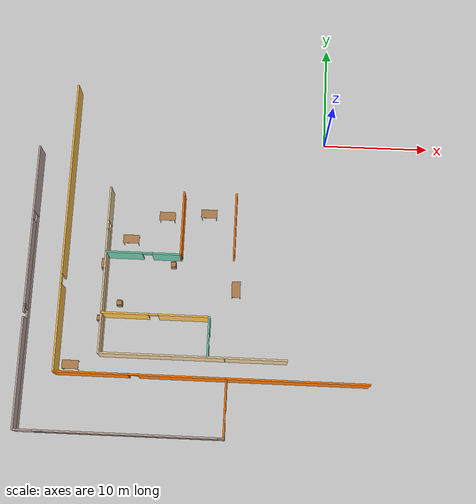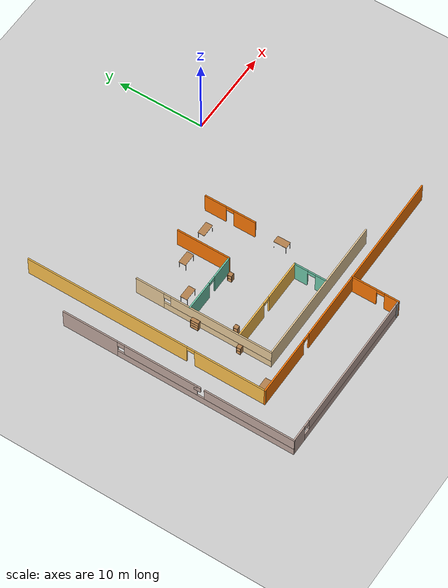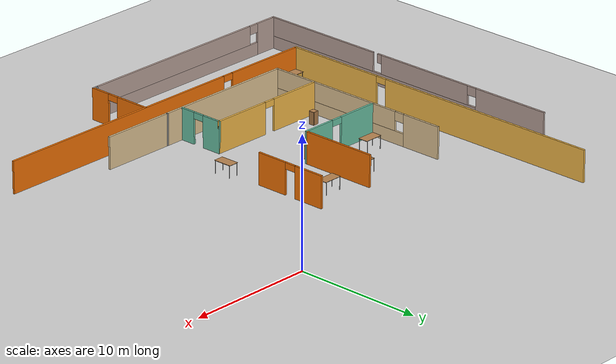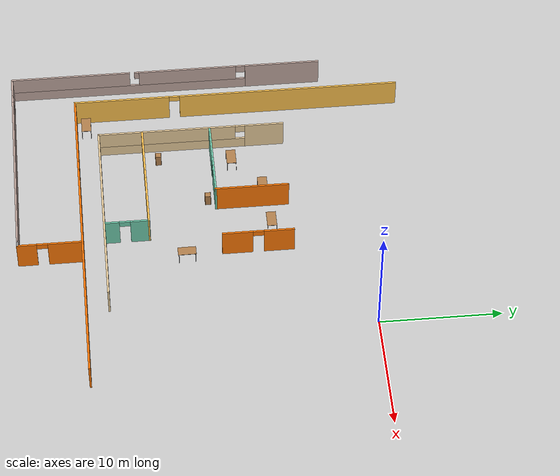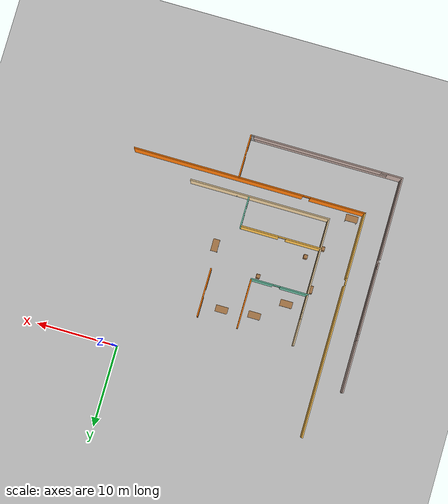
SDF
<sdf version="1.6">
 <world name="default">
  <model name="ground_plane">
   <static>1</static>
   <link name="link">
    <collision name="collision">
     <geometry><plane><normal>0 0 1</normal><size>100 100</size></plane></geometry>
     <surface>
      <contact><collide_bitmask>65535</collide_bitmask></contact>
      <friction><ode><mu>100</mu><mu2>50</mu2></ode></friction>
     </surface>
    </collision>
    <visual name="visual">
     <cast_shadows>0</cast_shadows>
     <geometry><plane><normal>0 0 1</normal><size>100 100</size></plane></geometry>
     <material>
      <script><uri>file://media/materials/scripts/gazebo.material</uri><name>Gazebo/Grey</name></script>
     </material>
    </visual>
   </link>
  </model>
  <model name="office">
   <pose>-7.49516 -7.8361 0 0 -0 0</pose>
   <link name="Wall_102">
    <collision name="Wall_102_Collision">
     <geometry><box><size>0.15 0.15 2.5</size></box></geometry>
     <pose>0 0 1.25 0 -0 0</pose>
    </collision>
    <visual name="Wall_102_Visual">
     <pose>0 0 1.25 0 -0 0</pose>
     <geometry><box><size>0.15 0.15 2.5</size></box></geometry>
     <material>
      <script><uri>file://media/materials/scripts/gazebo.material</uri><name>Gazebo/Grey</name></script>
      <ambient>1 1 1 1</ambient>
     </material>
     <meta><layer>0</layer></meta>
    </visual>
    <pose>-1.30984 -13.6609 0 0 -0 0</pose>
   </link>
   <link name="Wall_104">
    <pose>-9.25834 -4.24987 0 0 -0 0</pose>
    <visual name="Wall_104_Visual_0">
     <pose>-1.81443 0 1.25 0 -0 0</pose>
     <geometry><box><size>3.46632 0.15 2.5</size></box></geometry>
     <material>
      <script><uri>file://media/materials/scripts/gazebo.material</uri><name>Gazebo/Grey</name></script>
      <ambient>0.435294 0.796078 0.67451 1</ambient>
     </material>
     <meta><layer>0</layer></meta>
    </visual>
    <collision name="Wall_104_Collision_0">
     <geometry><box><size>3.46632 0.15 2.5</size></box></geometry>
     <pose>-1.81443 0 1.25 0 -0 0</pose>
    </collision>
    <visual name="Wall_104_Visual_1">
     <pose>2.18316 0 1.25 0 -0 0</pose>
     <geometry><box><size>2.72887 0.15 2.5</size></box></geometry>
     <material>
      <script><uri>file://media/materials/scripts/gazebo.material</uri><name>Gazebo/Grey</name></script>
      <ambient>0.435294 0.796078 0.67451 1</ambient>
     </material>
     <meta><layer>0</layer></meta>
    </visual>
    <collision name="Wall_104_Collision_1">
     <geometry><box><size>2.72887 0.15 2.5</size></box></geometry>
     <pose>2.18316 0 1.25 0 -0 0</pose>
    </collision>
    <visual name="Wall_104_Visual_2">
     <pose>0.368727 0 2.25 0 -0 0</pose>
     <geometry><box><size>0.9 0.15 0.5</size></box></geometry>
     <material>
      <script><uri>file://media/materials/scripts/gazebo.material</uri><name>Gazebo/Grey</name></script>
      <ambient>0.435294 0.796078 0.67451 1</ambient>
     </material>
     <meta><layer>0</layer></meta>
    </visual>
    <collision name="Wall_104_Collision_2">
     <geometry><box><size>0.9 0.15 0.5</size></box></geometry>
     <pose>0.368727 0 2.25 0 -0 0</pose>
    </collision>
   </link>
   <link name="Wall_105">
    <collision name="Wall_105_Collision">
     <geometry><box><size>6.163 0.15 2.5</size></box></geometry>
     <pose>0 0 1.25 0 -0 0</pose>
    </collision>
    <visual name="Wall_105_Visual">
     <pose>0 0 1.25 0 -0 0</pose>
     <geometry><box><size>6.163 0.15 2.5</size></box></geometry>
     <material>
      <script><uri>file://media/materials/scripts/gazebo.material</uri><name>Gazebo/Grey</name></script>
      <ambient>0.996078 0.47451 0.0196078 1</ambient>
     </material>
     <meta><layer>0</layer></meta>
    </visual>
    <pose>-5.78584 -1.24337 0 0 -0 1.5708</pose>
   </link>
   <link name="Wall_113">
    <pose>-2.36175 -15.5046 0 0 -0 3.14159</pose>
    <visual name="Wall_113_Visual_0">
     <pose>-3.87703 0 1.25 0 -0 0</pose>
     <geometry><box><size>20.9959 0.15 2.5</size></box></geometry>
     <material>
      <script><uri>file://media/materials/scripts/gazebo.material</uri><name>Gazebo/Grey</name></script>
      <ambient>0.996078 0.47451 0.0196078 1</ambient>
     </material>
     <meta><layer>0</layer></meta>
    </visual>
    <collision name="Wall_113_Collision_0">
     <geometry><box><size>20.9959 0.15 2.5</size></box></geometry>
     <pose>-3.87703 0 1.25 0 -0 0</pose>
    </collision>
    <visual name="Wall_113_Visual_1">
     <pose>10.948 0 1.25 0 -0 0</pose>
     <geometry><box><size>6.85407 0.15 2.5</size></box></geometry>
     <material>
      <script><uri>file://media/materials/scripts/gazebo.material</uri><name>Gazebo/Grey</name></script>
      <ambient>0.996078 0.47451 0.0196078 1</ambient>
     </material>
     <meta><layer>0</layer></meta>
    </visual>
    <collision name="Wall_113_Collision_1">
     <geometry><box><size>6.85407 0.15 2.5</size></box></geometry>
     <pose>10.948 0 1.25 0 -0 0</pose>
    </collision>
    <visual name="Wall_113_Visual_2">
     <pose>7.07093 0 2.25 0 -0 0</pose>
     <geometry><box><size>0.9 0.15 0.5</size></box></geometry>
     <material>
      <script><uri>file://media/materials/scripts/gazebo.material</uri><name>Gazebo/Grey</name></script>
      <ambient>0.996078 0.47451 0.0196078 1</ambient>
     </material>
     <meta><layer>0</layer></meta>
    </visual>
    <collision name="Wall_113_Collision_2">
     <geometry><box><size>0.9 0.15 0.5</size></box></geometry>
     <pose>7.07093 0 2.25 0 -0 0</pose>
    </collision>
   </link>
   <link name="Wall_114">
    <pose>-16.6618 -1.70464 0 0 -0 1.5708</pose>
    <visual name="Wall_114_Visual_0">
     <pose>-9.80586 0 1.25 0 -0 0</pose>
     <geometry><box><size>8.13829 0.15 2.5</size></box></geometry>
     <material>
      <script><uri>file://media/materials/scripts/gazebo.material</uri><name>Gazebo/Grey</name></script>
      <ambient>1 0.764706 0.305882 1</ambient>
     </material>
     <meta><layer>0</layer></meta>
    </visual>
    <collision name="Wall_114_Collision_0">
     <geometry><box><size>8.13829 0.15 2.5</size></box></geometry>
     <pose>-9.80586 0 1.25 0 -0 0</pose>
    </collision>
    <visual name="Wall_114_Visual_1">
     <pose>4.51914 0 1.25 0 -0 0</pose>
     <geometry><box><size>18.7117 0.15 2.5</size></box></geometry>
     <material>
      <script><uri>file://media/materials/scripts/gazebo.material</uri><name>Gazebo/Grey</name></script>
      <ambient>1 0.764706 0.305882 1</ambient>
     </material>
     <meta><layer>0</layer></meta>
    </visual>
    <collision name="Wall_114_Collision_1">
     <geometry><box><size>18.7117 0.15 2.5</size></box></geometry>
     <pose>4.51914 0 1.25 0 -0 0</pose>
    </collision>
    <visual name="Wall_114_Visual_2">
     <pose>-5.28671 0 2.25 0 -0 0</pose>
     <geometry><box><size>0.9 0.15 0.5</size></box></geometry>
     <material>
      <script><uri>file://media/materials/scripts/gazebo.material</uri><name>Gazebo/Grey</name></script>
      <ambient>1 0.764706 0.305882 1</ambient>
     </material>
     <meta><layer>0</layer></meta>
    </visual>
    <collision name="Wall_114_Collision_2">
     <geometry><box><size>0.9 0.15 0.5</size></box></geometry>
     <pose>-5.28671 0 2.25 0 -0 0</pose>
    </collision>
   </link>
   <link name="Wall_139">
    <pose>-1.01584 -18.1519 0 0 0 -1.5708</pose>
    <visual name="Wall_139_Visual_0">
     <pose>-1.27188 0 1.25 0 -0 0</pose>
     <geometry><box><size>2.9005 0.15 2.5</size></box></geometry>
     <material>
      <script><uri>file://media/materials/scripts/gazebo.material</uri><name>Gazebo/Grey</name></script>
      <ambient>0.996078 0.47451 0.0196078 1</ambient>
     </material>
     <meta><layer>0</layer></meta>
    </visual>
    <collision name="Wall_139_Collision_0">
     <geometry><box><size>2.9005 0.15 2.5</size></box></geometry>
     <pose>-1.27188 0 1.25 0 -0 0</pose>
    </collision>
    <visual name="Wall_139_Visual_1">
     <pose>1.90025 0 1.25 0 -0 0</pose>
     <geometry><box><size>1.64376 0.15 2.5</size></box></geometry>
     <material>
      <script><uri>file://media/materials/scripts/gazebo.material</uri><name>Gazebo/Grey</name></script>
      <ambient>0.996078 0.47451 0.0196078 1</ambient>
     </material>
     <meta><layer>0</layer></meta>
    </visual>
    <collision name="Wall_139_Collision_1">
     <geometry><box><size>1.64376 0.15 2.5</size></box></geometry>
     <pose>1.90025 0 1.25 0 -0 0</pose>
    </collision>
    <visual name="Wall_139_Visual_2">
     <pose>0.628368 0 2.25 0 -0 0</pose>
     <geometry><box><size>0.9 0.15 0.5</size></box></geometry>
     <material>
      <script><uri>file://media/materials/scripts/gazebo.material</uri><name>Gazebo/Grey</name></script>
      <ambient>0.996078 0.47451 0.0196078 1</ambient>
     </material>
     <meta><layer>0</layer></meta>
    </visual>
    <collision name="Wall_139_Collision_2">
     <geometry><box><size>0.9 0.15 0.5</size></box></geometry>
     <pose>0.628368 0 2.25 0 -0 0</pose>
    </collision>
   </link>
   <link name="Wall_145">
    <pose>-19.8248 -7.54437 0 0 0 -1.5708</pose>
    <visual name="Wall_145_Visual_0">
     <pose>-10.1231 0 1.25 0 -0 0</pose>
     <geometry><box><size>6.41324 0.15 2.5</size></box></geometry>
     <material>
      <script><uri>file://media/materials/scripts/gazebo.material</uri><name>Gazebo/Grey</name></script>
      <ambient>0.760784 0.662745 0.627451 1</ambient>
     </material>
     <meta><layer>0</layer></meta>
    </visual>
    <collision name="Wall_145_Collision_0">
     <geometry><box><size>6.41324 0.15 2.5</size></box></geometry>
     <pose>-10.1231 0 1.25 0 -0 0</pose>
    </collision>
    <visual name="Wall_145_Visual_1">
     <pose>3.20662 0 0.5 0 -0 0</pose>
     <geometry><box><size>20.2462 0.15 1</size></box></geometry>
     <material>
      <script><uri>file://media/materials/scripts/gazebo.material</uri><name>Gazebo/Grey</name></script>
      <ambient>0.760784 0.662745 0.627451 1</ambient>
     </material>
     <meta><layer>0</layer></meta>
    </visual>
    <collision name="Wall_145_Collision_1">
     <geometry><box><size>20.2462 0.15 1</size></box></geometry>
     <pose>3.20662 0 0.5 0 -0 0</pose>
    </collision>
    <visual name="Wall_145_Visual_2">
     <pose>-1.90829 0 1.75 0 -0 0</pose>
     <geometry><box><size>8.41636 0.15 1.5</size></box></geometry>
     <material>
      <script><uri>file://media/materials/scripts/gazebo.material</uri><name>Gazebo/Grey</name></script>
      <ambient>0.760784 0.662745 0.627451 1</ambient>
     </material>
     <meta><layer>0</layer></meta>
    </visual>
    <collision name="Wall_145_Collision_2">
     <geometry><box><size>8.41636 0.15 1.5</size></box></geometry>
     <pose>-1.90829 0 1.75 0 -0 0</pose>
    </collision>
    <visual name="Wall_145_Visual_3">
     <pose>8.2148 0 1.75 0 -0 0</pose>
     <geometry><box><size>10.2298 0.15 1.5</size></box></geometry>
     <material>
      <script><uri>file://media/materials/scripts/gazebo.material</uri><name>Gazebo/Grey</name></script>
      <ambient>0.760784 0.662745 0.627451 1</ambient>
     </material>
     <meta><layer>0</layer></meta>
    </visual>
    <collision name="Wall_145_Collision_3">
     <geometry><box><size>10.2298 0.15 1.5</size></box></geometry>
     <pose>8.2148 0 1.75 0 -0 0</pose>
    </collision>
    <visual name="Wall_145_Visual_4">
     <pose>-6.51647 0 2.15 0 -0 0</pose>
     <geometry><box><size>0.8 0.15 0.7</size></box></geometry>
     <material>
      <script><uri>file://media/materials/scripts/gazebo.material</uri><name>Gazebo/Grey</name></script>
      <ambient>0.760784 0.662745 0.627451 1</ambient>
     </material>
     <meta><layer>0</layer></meta>
    </visual>
    <collision name="Wall_145_Collision_4">
     <geometry><box><size>0.8 0.15 0.7</size></box></geometry>
     <pose>-6.51647 0 2.15 0 -0 0</pose>
    </collision>
    <visual name="Wall_145_Visual_5">
     <pose>2.29989 0 2.15 0 -0 0</pose>
     <geometry><box><size>0.8 0.15 0.7</size></box></geometry>
     <material>
      <script><uri>file://media/materials/scripts/gazebo.material</uri><name>Gazebo/Grey</name></script>
      <ambient>0.760784 0.662745 0.627451 1</ambient>
     </material>
     <meta><layer>0</layer></meta>
    </visual>
    <collision name="Wall_145_Collision_5">
     <geometry><box><size>0.8 0.15 0.7</size></box></geometry>
     <pose>2.29989 0 2.15 0 -0 0</pose>
    </collision>
   </link>
   <link name="Wall_146">
    <pose>-10.6498 -20.7989 0 0 -0 0</pose>
    <visual name="Wall_146_Visual_0">
     <pose>-8.30593 0 1.25 0 -0 0</pose>
     <geometry><box><size>1.88815 0.15 2.5</size></box></geometry>
     <material>
      <script><uri>file://media/materials/scripts/gazebo.material</uri><name>Gazebo/Grey</name></script>
      <ambient>0.760784 0.662745 0.627451 1</ambient>
     </material>
     <meta><layer>0</layer></meta>
    </visual>
    <collision name="Wall_146_Collision_0">
     <geometry><box><size>1.88815 0.15 2.5</size></box></geometry>
     <pose>-8.30593 0 1.25 0 -0 0</pose>
    </collision>
    <visual name="Wall_146_Visual_1">
     <pose>0.944075 0 0.5 0 -0 0</pose>
     <geometry><box><size>16.6118 0.15 1</size></box></geometry>
     <material>
      <script><uri>file://media/materials/scripts/gazebo.material</uri><name>Gazebo/Grey</name></script>
      <ambient>0.760784 0.662745 0.627451 1</ambient>
     </material>
     <meta><layer>0</layer></meta>
    </visual>
    <collision name="Wall_146_Collision_1">
     <geometry><box><size>16.6118 0.15 1</size></box></geometry>
     <pose>0.944075 0 0.5 0 -0 0</pose>
    </collision>
    <visual name="Wall_146_Visual_2">
     <pose>1.34407 0 1.75 0 -0 0</pose>
     <geometry><box><size>15.8118 0.15 1.5</size></box></geometry>
     <material>
      <script><uri>file://media/materials/scripts/gazebo.material</uri><name>Gazebo/Grey</name></script>
      <ambient>0.760784 0.662745 0.627451 1</ambient>
     </material>
     <meta><layer>0</layer></meta>
    </visual>
    <collision name="Wall_146_Collision_2">
     <geometry><box><size>15.8118 0.15 1.5</size></box></geometry>
     <pose>1.34407 0 1.75 0 -0 0</pose>
    </collision>
    <visual name="Wall_146_Visual_3">
     <pose>-6.96185 0 2.15 0 -0 0</pose>
     <geometry><box><size>0.8 0.15 0.7</size></box></geometry>
     <material>
      <script><uri>file://media/materials/scripts/gazebo.material</uri><name>Gazebo/Grey</name></script>
      <ambient>0.760784 0.662745 0.627451 1</ambient>
     </material>
     <meta><layer>0</layer></meta>
    </visual>
    <collision name="Wall_146_Collision_3">
     <geometry><box><size>0.8 0.15 0.7</size></box></geometry>
     <pose>-6.96185 0 2.15 0 -0 0</pose>
    </collision>
   </link>
   <link name="Wall_147">
    <collision name="Wall_147_Collision">
     <geometry><box><size>0.608865 0.15 2.5</size></box></geometry>
     <pose>0 0 1.25 0 -0 0</pose>
    </collision>
    <visual name="Wall_147_Visual">
     <pose>0 0 1.25 0 -0 0</pose>
     <geometry><box><size>0.608865 0.15 2.5</size></box></geometry>
     <material>
      <script><uri>file://media/materials/scripts/gazebo.material</uri><name>Gazebo/Grey</name></script>
      <ambient>1 1 1 1</ambient>
     </material>
     <meta><layer>0</layer></meta>
    </visual>
    <pose>-1.24534 -20.7989 0 0 -0 0</pose>
   </link>
   <link name="Wall_221">
    <pose>-7.75078 -9.97481 0 0 -0 0</pose>
    <visual name="Wall_221_Visual_0">
     <pose>-2.83593 0 1.25 0 -0 0</pose>
     <geometry><box><size>4.32813 0.15 2.5</size></box></geometry>
     <material>
      <script><uri>file://media/materials/scripts/gazebo.material</uri><name>Gazebo/Grey</name></script>
      <ambient>1 0.764706 0.305882 1</ambient>
     </material>
     <meta><layer>0</layer></meta>
    </visual>
    <collision name="Wall_221_Collision_0">
     <geometry><box><size>4.32813 0.15 2.5</size></box></geometry>
     <pose>-2.83593 0 1.25 0 -0 0</pose>
    </collision>
    <visual name="Wall_221_Visual_1">
     <pose>2.61407 0 1.25 0 -0 0</pose>
     <geometry><box><size>4.77187 0.15 2.5</size></box></geometry>
     <material>
      <script><uri>file://media/materials/scripts/gazebo.material</uri><name>Gazebo/Grey</name></script>
      <ambient>1 0.764706 0.305882 1</ambient>
     </material>
     <meta><layer>0</layer></meta>
    </visual>
    <collision name="Wall_221_Collision_1">
     <geometry><box><size>4.77187 0.15 2.5</size></box></geometry>
     <pose>2.61407 0 1.25 0 -0 0</pose>
    </collision>
    <visual name="Wall_221_Visual_2">
     <pose>-0.221866 0 2.25 0 -0 0</pose>
     <geometry><box><size>0.9 0.15 0.5</size></box></geometry>
     <material>
      <script><uri>file://media/materials/scripts/gazebo.material</uri><name>Gazebo/Grey</name></script>
      <ambient>1 0.764706 0.305882 1</ambient>
     </material>
     <meta><layer>0</layer></meta>
    </visual>
    <collision name="Wall_221_Collision_2">
     <geometry><box><size>0.9 0.15 0.5</size></box></geometry>
     <pose>-0.221866 0 2.25 0 -0 0</pose>
    </collision>
   </link>
   <link name="Wall_222">
    <pose>-2.82578 -11.7748 0 0 0 -1.5708</pose>
    <visual name="Wall_222_Visual_0">
     <pose>-1.06956 0 1.25 0 -0 0</pose>
     <geometry><box><size>1.61087 0.15 2.5</size></box></geometry>
     <material>
      <script><uri>file://media/materials/scripts/gazebo.material</uri><name>Gazebo/Grey</name></script>
      <ambient>0.435294 0.796078 0.67451 1</ambient>
     </material>
     <meta><layer>0</layer></meta>
    </visual>
    <collision name="Wall_222_Collision_0">
     <geometry><box><size>1.61087 0.15 2.5</size></box></geometry>
     <pose>-1.06956 0 1.25 0 -0 0</pose>
    </collision>
    <visual name="Wall_222_Visual_1">
     <pose>1.25544 0 1.25 0 -0 0</pose>
     <geometry><box><size>1.23913 0.15 2.5</size></box></geometry>
     <material>
      <script><uri>file://media/materials/scripts/gazebo.material</uri><name>Gazebo/Grey</name></script>
      <ambient>0.435294 0.796078 0.67451 1</ambient>
     </material>
     <meta><layer>0</layer></meta>
    </visual>
    <collision name="Wall_222_Collision_1">
     <geometry><box><size>1.23913 0.15 2.5</size></box></geometry>
     <pose>1.25544 0 1.25 0 -0 0</pose>
    </collision>
    <visual name="Wall_222_Visual_2">
     <pose>0.185871 0 2.25 0 -0 0</pose>
     <geometry><box><size>0.9 0.15 0.5</size></box></geometry>
     <material>
      <script><uri>file://media/materials/scripts/gazebo.material</uri><name>Gazebo/Grey</name></script>
      <ambient>0.435294 0.796078 0.67451 1</ambient>
     </material>
     <meta><layer>0</layer></meta>
    </visual>
    <collision name="Wall_222_Collision_2">
     <geometry><box><size>0.9 0.15 0.5</size></box></geometry>
     <pose>0.185871 0 2.25 0 -0 0</pose>
    </collision>
   </link>
   <link name="Wall_59">
    <pose>-12.7311 -5.85809 0 0 0 -1.57077</pose>
    <visual name="Wall_59_Visual_0">
     <pose>-6.2366 0 1.25 0 -0 0</pose>
     <geometry><box><size>3.28234 0.15 2.5</size></box></geometry>
     <material>
      <script><uri>file://media/materials/scripts/gazebo.material</uri><name>Gazebo/Grey</name></script>
      <ambient>0.921569 0.807843 0.615686 1</ambient>
     </material>
     <meta><layer>0</layer></meta>
    </visual>
    <collision name="Wall_59_Collision_0">
     <geometry><box><size>3.28234 0.15 2.5</size></box></geometry>
     <pose>-6.2366 0 1.25 0 -0 0</pose>
    </collision>
    <visual name="Wall_59_Visual_1">
     <pose>1.64117 0 0.5 0 -0 0</pose>
     <geometry><box><size>12.4732 0.15 1</size></box></geometry>
     <material>
      <script><uri>file://media/materials/scripts/gazebo.material</uri><name>Gazebo/Grey</name></script>
      <ambient>0.921569 0.807843 0.615686 1</ambient>
     </material>
     <meta><layer>0</layer></meta>
    </visual>
    <collision name="Wall_59_Collision_1">
     <geometry><box><size>12.4732 0.15 1</size></box></geometry>
     <pose>1.64117 0 0.5 0 -0 0</pose>
    </collision>
    <visual name="Wall_59_Visual_2">
     <pose>2.04117 0 1.75 0 -0 0</pose>
     <geometry><box><size>11.6732 0.15 1.5</size></box></geometry>
     <material>
      <script><uri>file://media/materials/scripts/gazebo.material</uri><name>Gazebo/Grey</name></script>
      <ambient>0.921569 0.807843 0.615686 1</ambient>
     </material>
     <meta><layer>0</layer></meta>
    </visual>
    <collision name="Wall_59_Collision_2">
     <geometry><box><size>11.6732 0.15 1.5</size></box></geometry>
     <pose>2.04117 0 1.75 0 -0 0</pose>
    </collision>
    <visual name="Wall_59_Visual_3">
     <pose>-4.19543 0 2.15 0 -0 0</pose>
     <geometry><box><size>0.8 0.15 0.7</size></box></geometry>
     <material>
      <script><uri>file://media/materials/scripts/gazebo.material</uri><name>Gazebo/Grey</name></script>
      <ambient>0.921569 0.807843 0.615686 1</ambient>
     </material>
     <meta><layer>0</layer></meta>
    </visual>
    <collision name="Wall_59_Collision_3">
     <geometry><box><size>0.8 0.15 0.7</size></box></geometry>
     <pose>-4.19543 0 2.15 0 -0 0</pose>
    </collision>
   </link>
   <link name="Wall_60">
    <collision name="Wall_60_Collision">
     <geometry><box><size>17.277 0.15 2.5</size></box></geometry>
     <pose>0 0 1.25 0 -0 0</pose>
    </collision>
    <visual name="Wall_60_Visual">
     <pose>0 0 1.25 0 -0 0</pose>
     <geometry><box><size>17.277 0.15 2.5</size></box></geometry>
     <material>
      <script><uri>file://media/materials/scripts/gazebo.material</uri><name>Gazebo/Grey</name></script>
      <ambient>0.921569 0.807843 0.615686 1</ambient>
     </material>
     <meta><layer>0</layer></meta>
    </visual>
    <pose>-4.16734 -13.6609 0 0 -0 0</pose>
   </link>
   <link name="Wall_85">
    <pose>-0.841839 -1.14187 0 0 0 -1.5708</pose>
    <visual name="Wall_85_Visual_0">
     <pose>-1.72479 0 1.25 0 -0 0</pose>
     <geometry><box><size>2.51083 0.15 2.5</size></box></geometry>
     <material>
      <script><uri>file://media/materials/scripts/gazebo.material</uri><name>Gazebo/Grey</name></script>
      <ambient>0.996078 0.47451 0.0196078 1</ambient>
     </material>
     <meta><layer>0</layer></meta>
    </visual>
    <collision name="Wall_85_Collision_0">
     <geometry><box><size>2.51083 0.15 2.5</size></box></geometry>
     <pose>-1.72479 0 1.25 0 -0 0</pose>
    </collision>
    <visual name="Wall_85_Visual_1">
     <pose>1.70541 0 1.25 0 -0 0</pose>
     <geometry><box><size>2.54958 0.15 2.5</size></box></geometry>
     <material>
      <script><uri>file://media/materials/scripts/gazebo.material</uri><name>Gazebo/Grey</name></script>
      <ambient>0.996078 0.47451 0.0196078 1</ambient>
     </material>
     <meta><layer>0</layer></meta>
    </visual>
    <collision name="Wall_85_Collision_1">
     <geometry><box><size>2.54958 0.15 2.5</size></box></geometry>
     <pose>1.70541 0 1.25 0 -0 0</pose>
    </collision>
    <visual name="Wall_85_Visual_2">
     <pose>-0.019376 0 2.25 0 -0 0</pose>
     <geometry><box><size>0.9 0.15 0.5</size></box></geometry>
     <material>
      <script><uri>file://media/materials/scripts/gazebo.material</uri><name>Gazebo/Grey</name></script>
      <ambient>0.996078 0.47451 0.0196078 1</ambient>
     </material>
     <meta><layer>0</layer></meta>
    </visual>
    <collision name="Wall_85_Collision_2">
     <geometry><box><size>0.9 0.15 0.5</size></box></geometry>
     <pose>-0.019376 0 2.25 0 -0 0</pose>
    </collision>
   </link>
   <static>1</static>
  </model>
  <model name="cabinet_0">
   <static>1</static>
   <link name="cabinet_bottom_plate">
    <inertial>
     <pose>0 0 -1 0 -0 0</pose>
     <inertia><ixx>2.05</ixx><ixy>0</ixy><ixz>0</ixz><iyy>2.05</iyy><iyz>0</iyz><izz>2.05</izz></inertia>
     <mass>25</mass>
    </inertial>
    <collision name="cabinet_bottom_plate_geom">
     <pose>0 0 0.01 0 -0 0</pose>
     <geometry><box><size>0.45 0.45 0.02</size></box></geometry>
    </collision>
    <visual name="cabinet_bottom_plate_geom_visual">
     <pose>0 0 0.01 0 -0 0</pose>
     <geometry><box><size>0.45 0.45 0.02</size></box></geometry>
     <material>
      <script><uri>file://media/materials/scripts/gazebo.material</uri><name>Gazebo/Wood</name></script>
     </material>
    </visual>
    <collision name="cabinet_bottom_plate_geom_cabinet_back_plate">
     <pose>0.235 0 0.51 0 -0 0</pose>
     <geometry><box><size>0.02 0.45 1.02</size></box></geometry>
    </collision>
    <visual name="cabinet_bottom_plate_geom_cabinet_back_plate_visual">
     <pose>0.235 0 0.51 0 -0 0</pose>
     <geometry><box><size>0.02 0.45 1.02</size></box></geometry>
     <material>
      <script><uri>file://media/materials/scripts/gazebo.material</uri><name>Gazebo/Wood</name></script>
     </material>
    </visual>
    <collision name="cabinet_bottom_plate_geom_cabinet_left_plate">
     <pose>0 0.235 0.51 0 -0 0</pose>
     <geometry><box><size>0.45 0.02 1.02</size></box></geometry>
    </collision>
    <visual name="cabinet_bottom_plate_geom_cabinet_left_plate_visual">
     <pose>0 0.235 0.51 0 -0 0</pose>
     <geometry><box><size>0.45 0.02 1.02</size></box></geometry>
     <material>
      <script><uri>file://media/materials/scripts/gazebo.material</uri><name>Gazebo/Wood</name></script>
     </material>
    </visual>
    <collision name="cabinet_bottom_plate_geom_cabinet_middle_plate">
     <pose>0 0 0.51 0 -0 0</pose>
     <geometry><box><size>0.45 0.45 0.02</size></box></geometry>
    </collision>
    <visual name="cabinet_bottom_plate_geom_cabinet_middle_plate_visual">
     <pose>0 0 0.51 0 -0 0</pose>
     <geometry><box><size>0.45 0.45 0.02</size></box></geometry>
     <material>
      <script><uri>file://media/materials/scripts/gazebo.material</uri><name>Gazebo/Wood</name></script>
     </material>
    </visual>
    <collision name="cabinet_bottom_plate_geom_cabinet_right_plate">
     <pose>0 -0.235 0.51 0 -0 0</pose>
     <geometry><box><size>0.45 0.02 1.02</size></box></geometry>
    </collision>
    <visual name="cabinet_bottom_plate_geom_cabinet_right_plate_visual">
     <pose>0 -0.235 0.51 0 -0 0</pose>
     <geometry><box><size>0.45 0.02 1.02</size></box></geometry>
     <material>
      <script><uri>file://media/materials/scripts/gazebo.material</uri><name>Gazebo/Wood</name></script>
     </material>
    </visual>
    <collision name="cabinet_bottom_plate_geom_cabinet_top_plate">
     <pose>0 0 1.01 0 -0 0</pose>
     <geometry><box><size>0.45 0.45 0.02</size></box></geometry>
    </collision>
    <visual name="cabinet_bottom_plate_geom_cabinet_top_plate_visual">
     <pose>0 0 1.01 0 -0 0</pose>
     <geometry><box><size>0.45 0.45 0.02</size></box></geometry>
     <material>
      <script><uri>file://media/materials/scripts/gazebo.material</uri><name>Gazebo/Wood</name></script>
     </material>
    </visual>
   </link>
   <pose>-20.5519 -18.075 0 0 -0 0</pose>
  </model>
  <model name="bookshelf_0">
   <static>1</static>
   <link name="link">
    <inertial><mass>1</mass></inertial>
    <collision name="back">
     <pose>0 0.005 0.6 0 -0 0</pose>
     <geometry><box><size>0.9 0.01 1.2</size></box></geometry>
    </collision>
    <visual name="visual1">
     <pose>0 0.005 0.6 0 -0 0</pose>
     <geometry><box><size>0.9 0.01 1.2</size></box></geometry>
     <material>
      <script><uri>file://media/materials/scripts/gazebo.material</uri><name>Gazebo/Wood</name></script>
     </material>
    </visual>
    <collision name="left_side">
     <pose>0.45 -0.195 0.6 0 -0 0</pose>
     <geometry><box><size>0.02 0.4 1.2</size></box></geometry>
    </collision>
    <visual name="visual2">
     <pose>0.45 -0.195 0.6 0 -0 0</pose>
     <geometry><box><size>0.02 0.4 1.2</size></box></geometry>
     <material>
      <script><uri>file://media/materials/scripts/gazebo.material</uri><name>Gazebo/Wood</name></script>
     </material>
    </visual>
    <collision name="right_side">
     <pose>-0.45 -0.195 0.6 0 -0 0</pose>
     <geometry><box><size>0.02 0.4 1.2</size></box></geometry>
    </collision>
    <visual name="visual3">
     <pose>-0.45 -0.195 0.6 0 -0 0</pose>
     <geometry><box><size>0.02 0.4 1.2</size></box></geometry>
     <material>
      <script><uri>file://media/materials/scripts/gazebo.material</uri><name>Gazebo/Wood</name></script>
     </material>
    </visual>
    <collision name="bottom">
     <pose>0 -0.195 0.03 0 -0 0</pose>
     <geometry><box><size>0.88 0.4 0.06</size></box></geometry>
    </collision>
    <visual name="visual4">
     <pose>0 -0.195 0.03 0 -0 0</pose>
     <geometry><box><size>0.88 0.4 0.06</size></box></geometry>
     <material>
      <script><uri>file://media/materials/scripts/gazebo.material</uri><name>Gazebo/Wood</name></script>
     </material>
    </visual>
    <collision name="top">
     <pose>0 -0.195 1.19 0 -0 0</pose>
     <geometry><box><size>0.88 0.4 0.02</size></box></geometry>
    </collision>
    <visual name="visual5">
     <pose>0 -0.195 1.19 0 -0 0</pose>
     <geometry><box><size>0.88 0.4 0.02</size></box></geometry>
     <material>
      <script><uri>file://media/materials/scripts/gazebo.material</uri><name>Gazebo/Wood</name></script>
     </material>
    </visual>
    <collision name="low_shelf">
     <pose>0 -0.195 0.43 0 -0 0</pose>
     <geometry><box><size>0.88 0.4 0.02</size></box></geometry>
    </collision>
    <visual name="visual6">
     <pose>0 -0.195 0.43 0 -0 0</pose>
     <geometry><box><size>0.88 0.4 0.02</size></box></geometry>
     <material>
      <script><uri>file://media/materials/scripts/gazebo.material</uri><name>Gazebo/Wood</name></script>
     </material>
    </visual>
    <collision name="high_shelf">
     <pose>0 -0.195 0.8 0 -0 0</pose>
     <geometry><box><size>0.88 0.4 0.02</size></box></geometry>
    </collision>
    <visual name="visual7">
     <pose>0 -0.195 0.8 0 -0 0</pose>
     <geometry><box><size>0.88 0.4 0.02</size></box></geometry>
     <material>
      <script><uri>file://media/materials/scripts/gazebo.material</uri><name>Gazebo/Wood</name></script>
     </material>
    </visual>
   </link>
   <pose>-20.3697 -12.9108 0 -0.049444 0.000206 -1.56663</pose>
  </model>
  <model name="table_1">
   <static>1</static>
   <link name="link">
    <collision name="surface">
     <pose>0 0 1 0 -0 0</pose>
     <geometry><box><size>1.5 0.8 0.03</size></box></geometry>
     <surface><friction><ode><mu>0.6</mu><mu2>0.6</mu2></ode></friction></surface>
    </collision>
    <visual name="visual1">
     <pose>0 0 1 0 -0 0</pose>
     <geometry><box><size>1.5 0.8 0.03</size></box></geometry>
     <material>
      <script><uri>file://media/materials/scripts/gazebo.material</uri><name>Gazebo/Wood</name></script>
     </material>
    </visual>
    <collision name="front_left_leg">
     <pose>0.68 0.38 0.5 0 -0 0</pose>
     <geometry><cylinder><radius>0.02</radius><length>1</length></cylinder></geometry>
    </collision>
    <visual name="front_left_leg">
     <pose>0.68 0.38 0.5 0 -0 0</pose>
     <geometry><cylinder><radius>0.02</radius><length>1</length></cylinder></geometry>
     <material>
      <script><uri>file://media/materials/scripts/gazebo.material</uri><name>Gazebo/Grey</name></script>
     </material>
    </visual>
    <collision name="front_right_leg">
     <pose>0.68 -0.38 0.5 0 -0 0</pose>
     <geometry><cylinder><radius>0.02</radius><length>1</length></cylinder></geometry>
    </collision>
    <visual name="front_right_leg">
     <pose>0.68 -0.38 0.5 0 -0 0</pose>
     <geometry><cylinder><radius>0.02</radius><length>1</length></cylinder></geometry>
     <material>
      <script><uri>file://media/materials/scripts/gazebo.material</uri><name>Gazebo/Grey</name></script>
     </material>
    </visual>
    <collision name="back_right_leg">
     <pose>-0.68 -0.38 0.5 0 -0 0</pose>
     <geometry><cylinder><radius>0.02</radius><length>1</length></cylinder></geometry>
    </collision>
    <visual name="back_right_leg">
     <pose>-0.68 -0.38 0.5 0 -0 0</pose>
     <geometry><cylinder><radius>0.02</radius><length>1</length></cylinder></geometry>
     <material>
      <script><uri>file://media/materials/scripts/gazebo.material</uri><name>Gazebo/Grey</name></script>
     </material>
    </visual>
    <collision name="back_left_leg">
     <pose>-0.68 0.38 0.5 0 -0 0</pose>
     <geometry><cylinder><radius>0.02</radius><length>1</length></cylinder></geometry>
    </collision>
    <visual name="back_left_leg">
     <pose>-0.68 0.38 0.5 0 -0 0</pose>
     <geometry><cylinder><radius>0.02</radius><length>1</length></cylinder></geometry>
     <material>
      <script><uri>file://media/materials/scripts/gazebo.material</uri><name>Gazebo/Grey</name></script>
     </material>
    </visual>
   </link>
   <pose>-22.8952 -22.5072 0 0 -0 0</pose>
  </model>
  <model name="cabinet_1">
   <static>1</static>
   <link name="cabinet_bottom_plate">
    <inertial>
     <pose>0 0 -1 0 -0 0</pose>
     <inertia><ixx>2.05</ixx><ixy>0</ixy><ixz>0</ixz><iyy>2.05</iyy><iyz>0</iyz><izz>2.05</izz></inertia>
     <mass>25</mass>
    </inertial>
    <collision name="cabinet_bottom_plate_geom">
     <pose>0 0 0.01 0 -0 0</pose>
     <geometry><box><size>0.45 0.45 0.02</size></box></geometry>
    </collision>
    <visual name="cabinet_bottom_plate_geom_visual">
     <pose>0 0 0.01 0 -0 0</pose>
     <geometry><box><size>0.45 0.45 0.02</size></box></geometry>
     <material>
      <script><uri>file://media/materials/scripts/gazebo.material</uri><name>Gazebo/Wood</name></script>
     </material>
    </visual>
    <collision name="cabinet_bottom_plate_geom_cabinet_back_plate">
     <pose>0.235 0 0.51 0 -0 0</pose>
     <geometry><box><size>0.02 0.45 1.02</size></box></geometry>
    </collision>
    <visual name="cabinet_bottom_plate_geom_cabinet_back_plate_visual">
     <pose>0.235 0 0.51 0 -0 0</pose>
     <geometry><box><size>0.02 0.45 1.02</size></box></geometry>
     <material>
      <script><uri>file://media/materials/scripts/gazebo.material</uri><name>Gazebo/Wood</name></script>
     </material>
    </visual>
    <collision name="cabinet_bottom_plate_geom_cabinet_left_plate">
     <pose>0 0.235 0.51 0 -0 0</pose>
     <geometry><box><size>0.45 0.02 1.02</size></box></geometry>
    </collision>
    <visual name="cabinet_bottom_plate_geom_cabinet_left_plate_visual">
     <pose>0 0.235 0.51 0 -0 0</pose>
     <geometry><box><size>0.45 0.02 1.02</size></box></geometry>
     <material>
      <script><uri>file://media/materials/scripts/gazebo.material</uri><name>Gazebo/Wood</name></script>
     </material>
    </visual>
    <collision name="cabinet_bottom_plate_geom_cabinet_middle_plate">
     <pose>0 0 0.51 0 -0 0</pose>
     <geometry><box><size>0.45 0.45 0.02</size></box></geometry>
    </collision>
    <visual name="cabinet_bottom_plate_geom_cabinet_middle_plate_visual">
     <pose>0 0 0.51 0 -0 0</pose>
     <geometry><box><size>0.45 0.45 0.02</size></box></geometry>
     <material>
      <script><uri>file://media/materials/scripts/gazebo.material</uri><name>Gazebo/Wood</name></script>
     </material>
    </visual>
    <collision name="cabinet_bottom_plate_geom_cabinet_right_plate">
     <pose>0 -0.235 0.51 0 -0 0</pose>
     <geometry><box><size>0.45 0.02 1.02</size></box></geometry>
    </collision>
    <visual name="cabinet_bottom_plate_geom_cabinet_right_plate_visual">
     <pose>0 -0.235 0.51 0 -0 0</pose>
     <geometry><box><size>0.45 0.02 1.02</size></box></geometry>
     <material>
      <script><uri>file://media/materials/scripts/gazebo.material</uri><name>Gazebo/Wood</name></script>
     </material>
    </visual>
    <collision name="cabinet_bottom_plate_geom_cabinet_top_plate">
     <pose>0 0 1.01 0 -0 0</pose>
     <geometry><box><size>0.45 0.45 0.02</size></box></geometry>
    </collision>
    <visual name="cabinet_bottom_plate_geom_cabinet_top_plate_visual">
     <pose>0 0 1.01 0 -0 0</pose>
     <geometry><box><size>0.45 0.45 0.02</size></box></geometry>
     <material>
      <script><uri>file://media/materials/scripts/gazebo.material</uri><name>Gazebo/Wood</name></script>
     </material>
    </visual>
   </link>
   <pose>-13.992 -12.727 0 0 -0 0</pose>
  </model>
  <model name="cabinet_2">
   <static>1</static>
   <link name="cabinet_bottom_plate">
    <inertial>
     <pose>0 0 -1 0 -0 0</pose>
     <inertia><ixx>2.05</ixx><ixy>0</ixy><ixz>0</ixz><iyy>2.05</iyy><iyz>0</iyz><izz>2.05</izz></inertia>
     <mass>25</mass>
    </inertial>
    <collision name="cabinet_bottom_plate_geom">
     <pose>0 0 0.01 0 -0 0</pose>
     <geometry><box><size>0.45 0.45 0.02</size></box></geometry>
    </collision>
    <visual name="cabinet_bottom_plate_geom_visual">
     <pose>0 0 0.01 0 -0 0</pose>
     <geometry><box><size>0.45 0.45 0.02</size></box></geometry>
     <material>
      <script><uri>file://media/materials/scripts/gazebo.material</uri><name>Gazebo/Wood</name></script>
     </material>
    </visual>
    <collision name="cabinet_bottom_plate_geom_cabinet_back_plate">
     <pose>0.235 0 0.51 0 -0 0</pose>
     <geometry><box><size>0.02 0.45 1.02</size></box></geometry>
    </collision>
    <visual name="cabinet_bottom_plate_geom_cabinet_back_plate_visual">
     <pose>0.235 0 0.51 0 -0 0</pose>
     <geometry><box><size>0.02 0.45 1.02</size></box></geometry>
     <material>
      <script><uri>file://media/materials/scripts/gazebo.material</uri><name>Gazebo/Wood</name></script>
     </material>
    </visual>
    <collision name="cabinet_bottom_plate_geom_cabinet_left_plate">
     <pose>0 0.235 0.51 0 -0 0</pose>
     <geometry><box><size>0.45 0.02 1.02</size></box></geometry>
    </collision>
    <visual name="cabinet_bottom_plate_geom_cabinet_left_plate_visual">
     <pose>0 0.235 0.51 0 -0 0</pose>
     <geometry><box><size>0.45 0.02 1.02</size></box></geometry>
     <material>
      <script><uri>file://media/materials/scripts/gazebo.material</uri><name>Gazebo/Wood</name></script>
     </material>
    </visual>
    <collision name="cabinet_bottom_plate_geom_cabinet_middle_plate">
     <pose>0 0 0.51 0 -0 0</pose>
     <geometry><box><size>0.45 0.45 0.02</size></box></geometry>
    </collision>
    <visual name="cabinet_bottom_plate_geom_cabinet_middle_plate_visual">
     <pose>0 0 0.51 0 -0 0</pose>
     <geometry><box><size>0.45 0.45 0.02</size></box></geometry>
     <material>
      <script><uri>file://media/materials/scripts/gazebo.material</uri><name>Gazebo/Wood</name></script>
     </material>
    </visual>
    <collision name="cabinet_bottom_plate_geom_cabinet_right_plate">
     <pose>0 -0.235 0.51 0 -0 0</pose>
     <geometry><box><size>0.45 0.02 1.02</size></box></geometry>
    </collision>
    <visual name="cabinet_bottom_plate_geom_cabinet_right_plate_visual">
     <pose>0 -0.235 0.51 0 -0 0</pose>
     <geometry><box><size>0.45 0.02 1.02</size></box></geometry>
     <material>
      <script><uri>file://media/materials/scripts/gazebo.material</uri><name>Gazebo/Wood</name></script>
     </material>
    </visual>
    <collision name="cabinet_bottom_plate_geom_cabinet_top_plate">
     <pose>0 0 1.01 0 -0 0</pose>
     <geometry><box><size>0.45 0.45 0.02</size></box></geometry>
    </collision>
    <visual name="cabinet_bottom_plate_geom_cabinet_top_plate_visual">
     <pose>0 0 1.01 0 -0 0</pose>
     <geometry><box><size>0.45 0.45 0.02</size></box></geometry>
     <material>
      <script><uri>file://media/materials/scripts/gazebo.material</uri><name>Gazebo/Wood</name></script>
     </material>
    </visual>
   </link>
   <pose>-18.8206 -16.5751 0 0 -0 0</pose>
  </model>
  <model name="table_4">
   <static>1</static>
   <link name="link">
    <collision name="surface">
     <pose>0 0 1 0 -0 0</pose>
     <geometry><box><size>1.5 0.8 0.03</size></box></geometry>
     <surface><friction><ode><mu>0.6</mu><mu2>0.6</mu2></ode></friction></surface>
    </collision>
    <visual name="visual1">
     <pose>0 0 1 0 -0 0</pose>
     <geometry><box><size>1.5 0.8 0.03</size></box></geometry>
     <material>
      <script><uri>file://media/materials/scripts/gazebo.material</uri><name>Gazebo/Wood</name></script>
     </material>
    </visual>
    <collision name="front_left_leg">
     <pose>0.68 0.38 0.5 0 -0 0</pose>
     <geometry><cylinder><radius>0.02</radius><length>1</length></cylinder></geometry>
    </collision>
    <visual name="front_left_leg">
     <pose>0.68 0.38 0.5 0 -0 0</pose>
     <geometry><cylinder><radius>0.02</radius><length>1</length></cylinder></geometry>
     <material>
      <script><uri>file://media/materials/scripts/gazebo.material</uri><name>Gazebo/Grey</name></script>
     </material>
    </visual>
    <collision name="front_right_leg">
     <pose>0.68 -0.38 0.5 0 -0 0</pose>
     <geometry><cylinder><radius>0.02</radius><length>1</length></cylinder></geometry>
    </collision>
    <visual name="front_right_leg">
     <pose>0.68 -0.38 0.5 0 -0 0</pose>
     <geometry><cylinder><radius>0.02</radius><length>1</length></cylinder></geometry>
     <material>
      <script><uri>file://media/materials/scripts/gazebo.material</uri><name>Gazebo/Grey</name></script>
     </material>
    </visual>
    <collision name="back_right_leg">
     <pose>-0.68 -0.38 0.5 0 -0 0</pose>
     <geometry><cylinder><radius>0.02</radius><length>1</length></cylinder></geometry>
    </collision>
    <visual name="back_right_leg">
     <pose>-0.68 -0.38 0.5 0 -0 0</pose>
     <geometry><cylinder><radius>0.02</radius><length>1</length></cylinder></geometry>
     <material>
      <script><uri>file://media/materials/scripts/gazebo.material</uri><name>Gazebo/Grey</name></script>
     </material>
    </visual>
    <collision name="back_left_leg">
     <pose>-0.68 0.38 0.5 0 -0 0</pose>
     <geometry><cylinder><radius>0.02</radius><length>1</length></cylinder></geometry>
    </collision>
    <visual name="back_left_leg">
     <pose>-0.68 0.38 0.5 0 -0 0</pose>
     <geometry><cylinder><radius>0.02</radius><length>1</length></cylinder></geometry>
     <material>
      <script><uri>file://media/materials/scripts/gazebo.material</uri><name>Gazebo/Grey</name></script>
     </material>
    </visual>
   </link>
   <pose>-10.8739 -7.66948 0 0 -0 0</pose>
  </model>
  <model name="table_5">
   <static>1</static>
   <link name="link">
    <collision name="surface">
     <pose>0 0 1 0 -0 0</pose>
     <geometry><box><size>1.5 0.8 0.03</size></box></geometry>
     <surface><friction><ode><mu>0.6</mu><mu2>0.6</mu2></ode></friction></surface>
    </collision>
    <visual name="visual1">
     <pose>0 0 1 0 -0 0</pose>
     <geometry><box><size>1.5 0.8 0.03</size></box></geometry>
     <material>
      <script><uri>file://media/materials/scripts/gazebo.material</uri><name>Gazebo/Wood</name></script>
     </material>
    </visual>
    <collision name="front_left_leg">
     <pose>0.68 0.38 0.5 0 -0 0</pose>
     <geometry><cylinder><radius>0.02</radius><length>1</length></cylinder></geometry>
    </collision>
    <visual name="front_left_leg">
     <pose>0.68 0.38 0.5 0 -0 0</pose>
     <geometry><cylinder><radius>0.02</radius><length>1</length></cylinder></geometry>
     <material>
      <script><uri>file://media/materials/scripts/gazebo.material</uri><name>Gazebo/Grey</name></script>
     </material>
    </visual>
    <collision name="front_right_leg">
     <pose>0.68 -0.38 0.5 0 -0 0</pose>
     <geometry><cylinder><radius>0.02</radius><length>1</length></cylinder></geometry>
    </collision>
    <visual name="front_right_leg">
     <pose>0.68 -0.38 0.5 0 -0 0</pose>
     <geometry><cylinder><radius>0.02</radius><length>1</length></cylinder></geometry>
     <material>
      <script><uri>file://media/materials/scripts/gazebo.material</uri><name>Gazebo/Grey</name></script>
     </material>
    </visual>
    <collision name="back_right_leg">
     <pose>-0.68 -0.38 0.5 0 -0 0</pose>
     <geometry><cylinder><radius>0.02</radius><length>1</length></cylinder></geometry>
    </collision>
    <visual name="back_right_leg">
     <pose>-0.68 -0.38 0.5 0 -0 0</pose>
     <geometry><cylinder><radius>0.02</radius><length>1</length></cylinder></geometry>
     <material>
      <script><uri>file://media/materials/scripts/gazebo.material</uri><name>Gazebo/Grey</name></script>
     </material>
    </visual>
    <collision name="back_left_leg">
     <pose>-0.68 0.38 0.5 0 -0 0</pose>
     <geometry><cylinder><radius>0.02</radius><length>1</length></cylinder></geometry>
    </collision>
    <visual name="back_left_leg">
     <pose>-0.68 0.38 0.5 0 -0 0</pose>
     <geometry><cylinder><radius>0.02</radius><length>1</length></cylinder></geometry>
     <material>
      <script><uri>file://media/materials/scripts/gazebo.material</uri><name>Gazebo/Grey</name></script>
     </material>
    </visual>
   </link>
   <pose>-18.1175 -10.4395 0 0 -0 0</pose>
  </model>
  <model name="table_6">
   <static>1</static>
   <link name="link">
    <collision name="surface">
     <pose>0 0 1 0 -0 0</pose>
     <geometry><box><size>1.5 0.8 0.03</size></box></geometry>
     <surface><friction><ode><mu>0.6</mu><mu2>0.6</mu2></ode></friction></surface>
    </collision>
    <visual name="visual1">
     <pose>0 0 1 0 -0 0</pose>
     <geometry><box><size>1.5 0.8 0.03</size></box></geometry>
     <material>
      <script><uri>file://media/materials/scripts/gazebo.material</uri><name>Gazebo/Wood</name></script>
     </material>
    </visual>
    <collision name="front_left_leg">
     <pose>0.68 0.38 0.5 0 -0 0</pose>
     <geometry><cylinder><radius>0.02</radius><length>1</length></cylinder></geometry>
    </collision>
    <visual name="front_left_leg">
     <pose>0.68 0.38 0.5 0 -0 0</pose>
     <geometry><cylinder><radius>0.02</radius><length>1</length></cylinder></geometry>
     <material>
      <script><uri>file://media/materials/scripts/gazebo.material</uri><name>Gazebo/Grey</name></script>
     </material>
    </visual>
    <collision name="front_right_leg">
     <pose>0.68 -0.38 0.5 0 -0 0</pose>
     <geometry><cylinder><radius>0.02</radius><length>1</length></cylinder></geometry>
    </collision>
    <visual name="front_right_leg">
     <pose>0.68 -0.38 0.5 0 -0 0</pose>
     <geometry><cylinder><radius>0.02</radius><length>1</length></cylinder></geometry>
     <material>
      <script><uri>file://media/materials/scripts/gazebo.material</uri><name>Gazebo/Grey</name></script>
     </material>
    </visual>
    <collision name="back_right_leg">
     <pose>-0.68 -0.38 0.5 0 -0 0</pose>
     <geometry><cylinder><radius>0.02</radius><length>1</length></cylinder></geometry>
    </collision>
    <visual name="back_right_leg">
     <pose>-0.68 -0.38 0.5 0 -0 0</pose>
     <geometry><cylinder><radius>0.02</radius><length>1</length></cylinder></geometry>
     <material>
      <script><uri>file://media/materials/scripts/gazebo.material</uri><name>Gazebo/Grey</name></script>
     </material>
    </visual>
    <collision name="back_left_leg">
     <pose>-0.68 0.38 0.5 0 -0 0</pose>
     <geometry><cylinder><radius>0.02</radius><length>1</length></cylinder></geometry>
    </collision>
    <visual name="back_left_leg">
     <pose>-0.68 0.38 0.5 0 -0 0</pose>
     <geometry><cylinder><radius>0.02</radius><length>1</length></cylinder></geometry>
     <material>
      <script><uri>file://media/materials/scripts/gazebo.material</uri><name>Gazebo/Grey</name></script>
     </material>
    </visual>
   </link>
   <pose>-14.8265 -8.06141 0 0 -0 0</pose>
  </model>
  <model name="table_11">
   <static>1</static>
   <link name="link">
    <collision name="surface">
     <pose>0 0 1 0 -0 0</pose>
     <geometry><box><size>1.5 0.8 0.03</size></box></geometry>
     <surface><friction><ode><mu>0.6</mu><mu2>0.6</mu2></ode></friction></surface>
    </collision>
    <visual name="visual1">
     <pose>0 0 1 0 -0 0</pose>
     <geometry><box><size>1.5 0.8 0.03</size></box></geometry>
     <material>
      <script><uri>file://media/materials/scripts/gazebo.material</uri><name>Gazebo/Wood</name></script>
     </material>
    </visual>
    <collision name="front_left_leg">
     <pose>0.68 0.38 0.5 0 -0 0</pose>
     <geometry><cylinder><radius>0.02</radius><length>1</length></cylinder></geometry>
    </collision>
    <visual name="front_left_leg">
     <pose>0.68 0.38 0.5 0 -0 0</pose>
     <geometry><cylinder><radius>0.02</radius><length>1</length></cylinder></geometry>
     <material>
      <script><uri>file://media/materials/scripts/gazebo.material</uri><name>Gazebo/Grey</name></script>
     </material>
    </visual>
    <collision name="front_right_leg">
     <pose>0.68 -0.38 0.5 0 -0 0</pose>
     <geometry><cylinder><radius>0.02</radius><length>1</length></cylinder></geometry>
    </collision>
    <visual name="front_right_leg">
     <pose>0.68 -0.38 0.5 0 -0 0</pose>
     <geometry><cylinder><radius>0.02</radius><length>1</length></cylinder></geometry>
     <material>
      <script><uri>file://media/materials/scripts/gazebo.material</uri><name>Gazebo/Grey</name></script>
     </material>
    </visual>
    <collision name="back_right_leg">
     <pose>-0.68 -0.38 0.5 0 -0 0</pose>
     <geometry><cylinder><radius>0.02</radius><length>1</length></cylinder></geometry>
    </collision>
    <visual name="back_right_leg">
     <pose>-0.68 -0.38 0.5 0 -0 0</pose>
     <geometry><cylinder><radius>0.02</radius><length>1</length></cylinder></geometry>
     <material>
      <script><uri>file://media/materials/scripts/gazebo.material</uri><name>Gazebo/Grey</name></script>
     </material>
    </visual>
    <collision name="back_left_leg">
     <pose>-0.68 0.38 0.5 0 -0 0</pose>
     <geometry><cylinder><radius>0.02</radius><length>1</length></cylinder></geometry>
    </collision>
    <visual name="back_left_leg">
     <pose>-0.68 0.38 0.5 0 -0 0</pose>
     <geometry><cylinder><radius>0.02</radius><length>1</length></cylinder></geometry>
     <material>
      <script><uri>file://media/materials/scripts/gazebo.material</uri><name>Gazebo/Grey</name></script>
     </material>
    </visual>
   </link>
   <pose>-8.01295 -14.8816 0 0 0 -1.56185</pose>
  </model>
 </world>
</sdf>
